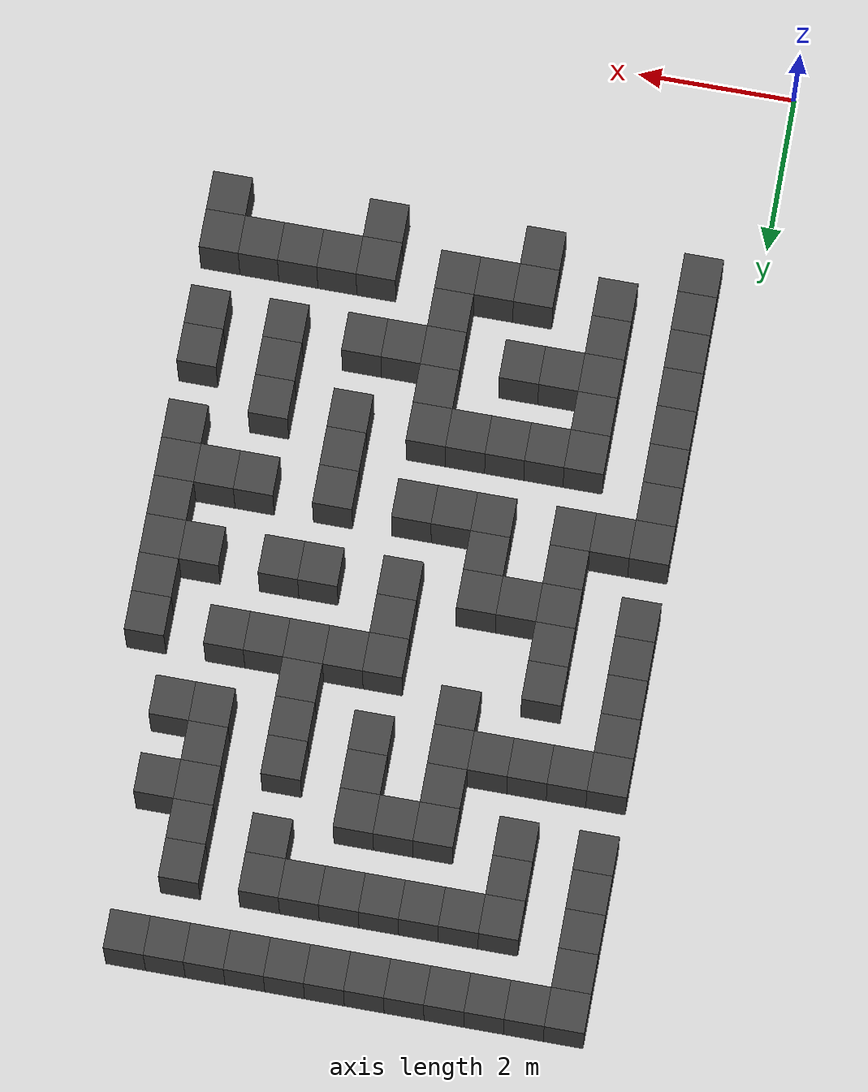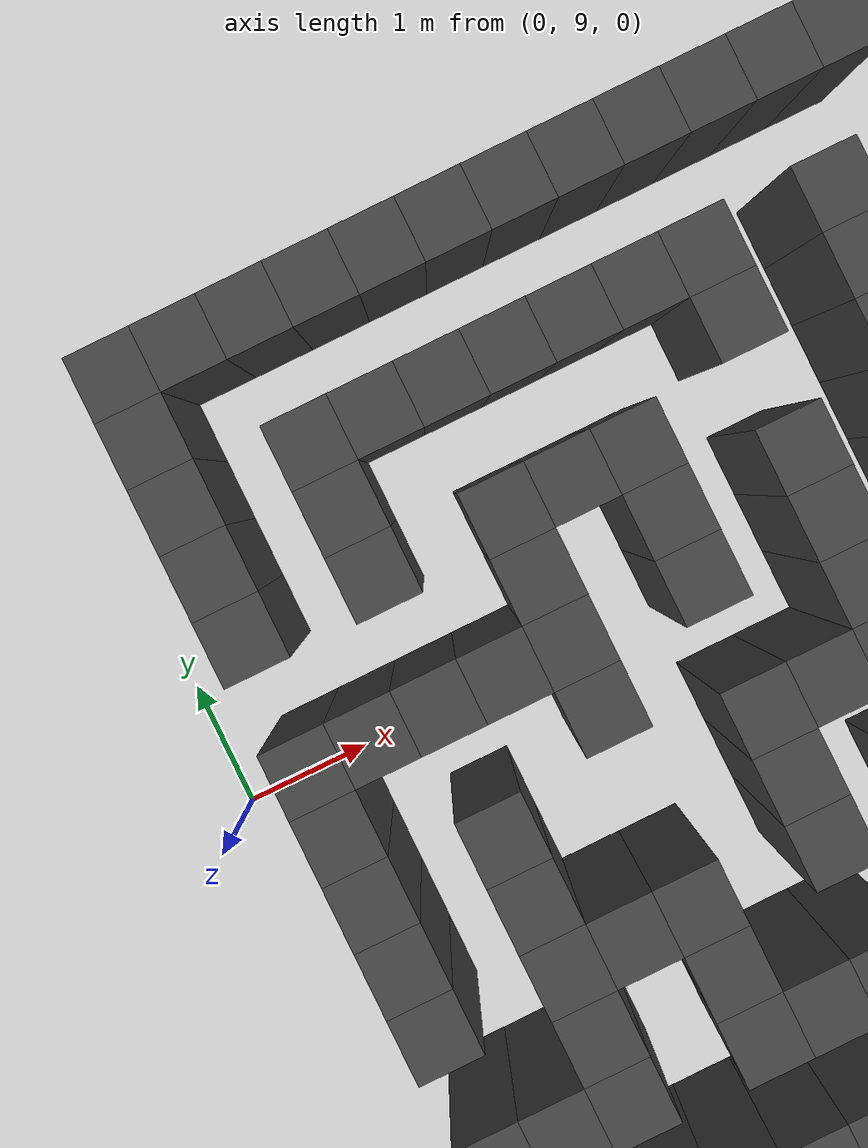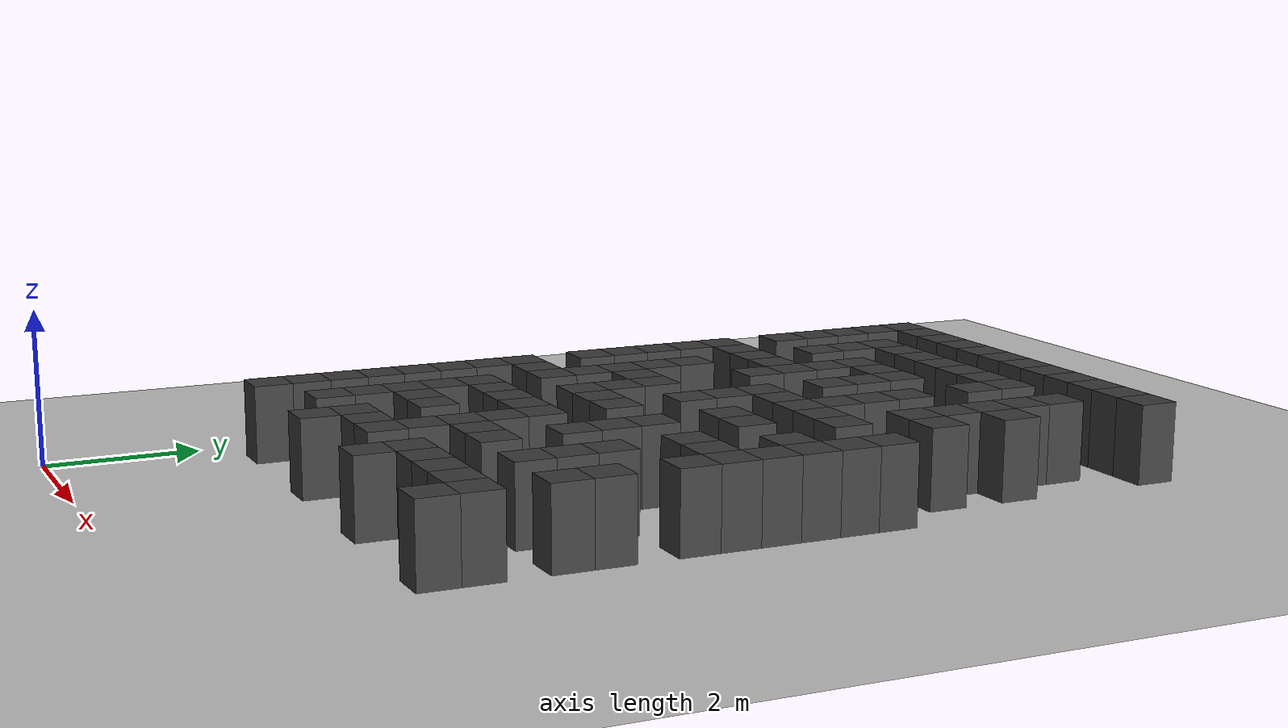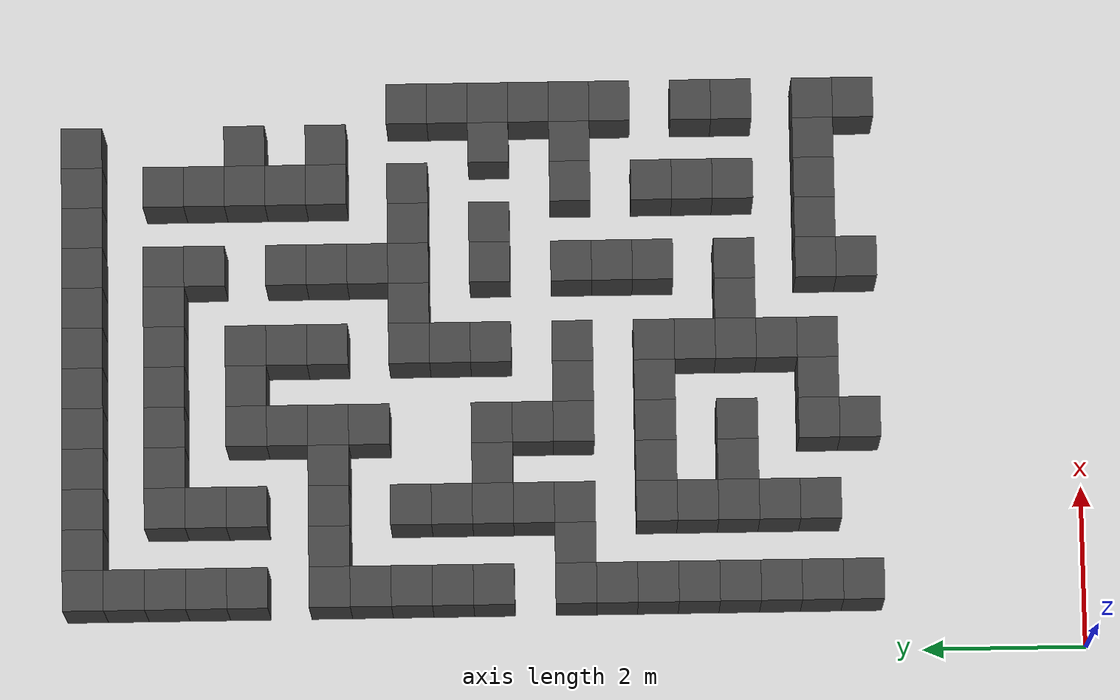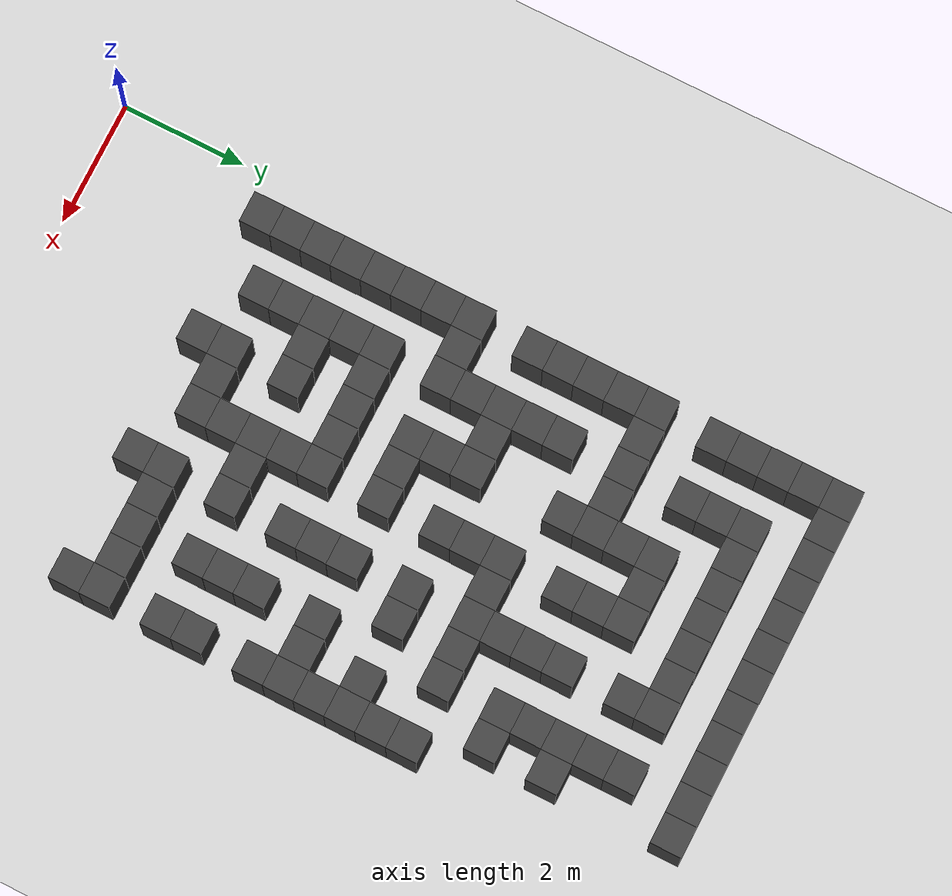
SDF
<sdf version="1.7">
 <world name="map_16588">
  <model name="ground_plane">
   <static>true</static>
   <link name="link">
    <collision name="collision">
     <geometry><plane><normal>0 0 1</normal><size>200 200</size></plane></geometry>
    </collision>
    <visual name="visual">
     <geometry><plane><normal>0 0 1</normal><size>200 200</size></plane></geometry>
     <material><ambient>0.8 0.8 0.8 1</ambient><diffuse>0.8 0.8 0.8 1</diffuse></material>
    </visual>
   </link>
  </model>
  <model name="maze_environment">
   <static>true</static>
   <link name="wall_26">
    <pose>0.750 12.250 0.500 0 0 0</pose>
    <collision name="col"><geometry><box><size>0.5 0.5 1.0</size></box></geometry></collision>
    <visual name="vis">
     <geometry><box><size>0.5 0.5 1.0</size></box></geometry>
     <material><ambient>0.15 0.15 0.15 1</ambient><diffuse>0.25 0.25 0.25 1</diffuse></material>
    </visual>
   </link>
   <link name="wall_27">
    <pose>1.250 12.250 0.500 0 0 0</pose>
    <collision name="col"><geometry><box><size>0.5 0.5 1.0</size></box></geometry></collision>
    <visual name="vis">
     <geometry><box><size>0.5 0.5 1.0</size></box></geometry>
     <material><ambient>0.15 0.15 0.15 1</ambient><diffuse>0.25 0.25 0.25 1</diffuse></material>
    </visual>
   </link>
   <link name="wall_28">
    <pose>1.750 12.250 0.500 0 0 0</pose>
    <collision name="col"><geometry><box><size>0.5 0.5 1.0</size></box></geometry></collision>
    <visual name="vis">
     <geometry><box><size>0.5 0.5 1.0</size></box></geometry>
     <material><ambient>0.15 0.15 0.15 1</ambient><diffuse>0.25 0.25 0.25 1</diffuse></material>
    </visual>
   </link>
   <link name="wall_29">
    <pose>2.250 12.250 0.500 0 0 0</pose>
    <collision name="col"><geometry><box><size>0.5 0.5 1.0</size></box></geometry></collision>
    <visual name="vis">
     <geometry><box><size>0.5 0.5 1.0</size></box></geometry>
     <material><ambient>0.15 0.15 0.15 1</ambient><diffuse>0.25 0.25 0.25 1</diffuse></material>
    </visual>
   </link>
   <link name="wall_30">
    <pose>2.750 12.250 0.500 0 0 0</pose>
    <collision name="col"><geometry><box><size>0.5 0.5 1.0</size></box></geometry></collision>
    <visual name="vis">
     <geometry><box><size>0.5 0.5 1.0</size></box></geometry>
     <material><ambient>0.15 0.15 0.15 1</ambient><diffuse>0.25 0.25 0.25 1</diffuse></material>
    </visual>
   </link>
   <link name="wall_31">
    <pose>3.250 12.250 0.500 0 0 0</pose>
    <collision name="col"><geometry><box><size>0.5 0.5 1.0</size></box></geometry></collision>
    <visual name="vis">
     <geometry><box><size>0.5 0.5 1.0</size></box></geometry>
     <material><ambient>0.15 0.15 0.15 1</ambient><diffuse>0.25 0.25 0.25 1</diffuse></material>
    </visual>
   </link>
   <link name="wall_32">
    <pose>3.750 12.250 0.500 0 0 0</pose>
    <collision name="col"><geometry><box><size>0.5 0.5 1.0</size></box></geometry></collision>
    <visual name="vis">
     <geometry><box><size>0.5 0.5 1.0</size></box></geometry>
     <material><ambient>0.15 0.15 0.15 1</ambient><diffuse>0.25 0.25 0.25 1</diffuse></material>
    </visual>
   </link>
   <link name="wall_33">
    <pose>4.250 12.250 0.500 0 0 0</pose>
    <collision name="col"><geometry><box><size>0.5 0.5 1.0</size></box></geometry></collision>
    <visual name="vis">
     <geometry><box><size>0.5 0.5 1.0</size></box></geometry>
     <material><ambient>0.15 0.15 0.15 1</ambient><diffuse>0.25 0.25 0.25 1</diffuse></material>
    </visual>
   </link>
   <link name="wall_34">
    <pose>4.750 12.250 0.500 0 0 0</pose>
    <collision name="col"><geometry><box><size>0.5 0.5 1.0</size></box></geometry></collision>
    <visual name="vis">
     <geometry><box><size>0.5 0.5 1.0</size></box></geometry>
     <material><ambient>0.15 0.15 0.15 1</ambient><diffuse>0.25 0.25 0.25 1</diffuse></material>
    </visual>
   </link>
   <link name="wall_35">
    <pose>5.250 12.250 0.500 0 0 0</pose>
    <collision name="col"><geometry><box><size>0.5 0.5 1.0</size></box></geometry></collision>
    <visual name="vis">
     <geometry><box><size>0.5 0.5 1.0</size></box></geometry>
     <material><ambient>0.15 0.15 0.15 1</ambient><diffuse>0.25 0.25 0.25 1</diffuse></material>
    </visual>
   </link>
   <link name="wall_36">
    <pose>5.750 12.250 0.500 0 0 0</pose>
    <collision name="col"><geometry><box><size>0.5 0.5 1.0</size></box></geometry></collision>
    <visual name="vis">
     <geometry><box><size>0.5 0.5 1.0</size></box></geometry>
     <material><ambient>0.15 0.15 0.15 1</ambient><diffuse>0.25 0.25 0.25 1</diffuse></material>
    </visual>
   </link>
   <link name="wall_37">
    <pose>6.250 12.250 0.500 0 0 0</pose>
    <collision name="col"><geometry><box><size>0.5 0.5 1.0</size></box></geometry></collision>
    <visual name="vis">
     <geometry><box><size>0.5 0.5 1.0</size></box></geometry>
     <material><ambient>0.15 0.15 0.15 1</ambient><diffuse>0.25 0.25 0.25 1</diffuse></material>
    </visual>
   </link>
   <link name="wall_55">
    <pose>0.750 11.750 0.500 0 0 0</pose>
    <collision name="col"><geometry><box><size>0.5 0.5 1.0</size></box></geometry></collision>
    <visual name="vis">
     <geometry><box><size>0.5 0.5 1.0</size></box></geometry>
     <material><ambient>0.15 0.15 0.15 1</ambient><diffuse>0.25 0.25 0.25 1</diffuse></material>
    </visual>
   </link>
   <link name="wall_75">
    <pose>0.750 11.250 0.500 0 0 0</pose>
    <collision name="col"><geometry><box><size>0.5 0.5 1.0</size></box></geometry></collision>
    <visual name="vis">
     <geometry><box><size>0.5 0.5 1.0</size></box></geometry>
     <material><ambient>0.15 0.15 0.15 1</ambient><diffuse>0.25 0.25 0.25 1</diffuse></material>
    </visual>
   </link>
   <link name="wall_76">
    <pose>1.750 11.250 0.500 0 0 0</pose>
    <collision name="col"><geometry><box><size>0.5 0.5 1.0</size></box></geometry></collision>
    <visual name="vis">
     <geometry><box><size>0.5 0.5 1.0</size></box></geometry>
     <material><ambient>0.15 0.15 0.15 1</ambient><diffuse>0.25 0.25 0.25 1</diffuse></material>
    </visual>
   </link>
   <link name="wall_77">
    <pose>2.250 11.250 0.500 0 0 0</pose>
    <collision name="col"><geometry><box><size>0.5 0.5 1.0</size></box></geometry></collision>
    <visual name="vis">
     <geometry><box><size>0.5 0.5 1.0</size></box></geometry>
     <material><ambient>0.15 0.15 0.15 1</ambient><diffuse>0.25 0.25 0.25 1</diffuse></material>
    </visual>
   </link>
   <link name="wall_78">
    <pose>2.750 11.250 0.500 0 0 0</pose>
    <collision name="col"><geometry><box><size>0.5 0.5 1.0</size></box></geometry></collision>
    <visual name="vis">
     <geometry><box><size>0.5 0.5 1.0</size></box></geometry>
     <material><ambient>0.15 0.15 0.15 1</ambient><diffuse>0.25 0.25 0.25 1</diffuse></material>
    </visual>
   </link>
   <link name="wall_79">
    <pose>3.250 11.250 0.500 0 0 0</pose>
    <collision name="col"><geometry><box><size>0.5 0.5 1.0</size></box></geometry></collision>
    <visual name="vis">
     <geometry><box><size>0.5 0.5 1.0</size></box></geometry>
     <material><ambient>0.15 0.15 0.15 1</ambient><diffuse>0.25 0.25 0.25 1</diffuse></material>
    </visual>
   </link>
   <link name="wall_80">
    <pose>3.750 11.250 0.500 0 0 0</pose>
    <collision name="col"><geometry><box><size>0.5 0.5 1.0</size></box></geometry></collision>
    <visual name="vis">
     <geometry><box><size>0.5 0.5 1.0</size></box></geometry>
     <material><ambient>0.15 0.15 0.15 1</ambient><diffuse>0.25 0.25 0.25 1</diffuse></material>
    </visual>
   </link>
   <link name="wall_81">
    <pose>4.250 11.250 0.500 0 0 0</pose>
    <collision name="col"><geometry><box><size>0.5 0.5 1.0</size></box></geometry></collision>
    <visual name="vis">
     <geometry><box><size>0.5 0.5 1.0</size></box></geometry>
     <material><ambient>0.15 0.15 0.15 1</ambient><diffuse>0.25 0.25 0.25 1</diffuse></material>
    </visual>
   </link>
   <link name="wall_82">
    <pose>4.750 11.250 0.500 0 0 0</pose>
    <collision name="col"><geometry><box><size>0.5 0.5 1.0</size></box></geometry></collision>
    <visual name="vis">
     <geometry><box><size>0.5 0.5 1.0</size></box></geometry>
     <material><ambient>0.15 0.15 0.15 1</ambient><diffuse>0.25 0.25 0.25 1</diffuse></material>
    </visual>
   </link>
   <link name="wall_83">
    <pose>5.750 11.250 0.500 0 0 0</pose>
    <collision name="col"><geometry><box><size>0.5 0.5 1.0</size></box></geometry></collision>
    <visual name="vis">
     <geometry><box><size>0.5 0.5 1.0</size></box></geometry>
     <material><ambient>0.15 0.15 0.15 1</ambient><diffuse>0.25 0.25 0.25 1</diffuse></material>
    </visual>
   </link>
   <link name="wall_101">
    <pose>0.750 10.750 0.500 0 0 0</pose>
    <collision name="col"><geometry><box><size>0.5 0.5 1.0</size></box></geometry></collision>
    <visual name="vis">
     <geometry><box><size>0.5 0.5 1.0</size></box></geometry>
     <material><ambient>0.15 0.15 0.15 1</ambient><diffuse>0.25 0.25 0.25 1</diffuse></material>
    </visual>
   </link>
   <link name="wall_102">
    <pose>1.750 10.750 0.500 0 0 0</pose>
    <collision name="col"><geometry><box><size>0.5 0.5 1.0</size></box></geometry></collision>
    <visual name="vis">
     <geometry><box><size>0.5 0.5 1.0</size></box></geometry>
     <material><ambient>0.15 0.15 0.15 1</ambient><diffuse>0.25 0.25 0.25 1</diffuse></material>
    </visual>
   </link>
   <link name="wall_103">
    <pose>4.750 10.750 0.500 0 0 0</pose>
    <collision name="col"><geometry><box><size>0.5 0.5 1.0</size></box></geometry></collision>
    <visual name="vis">
     <geometry><box><size>0.5 0.5 1.0</size></box></geometry>
     <material><ambient>0.15 0.15 0.15 1</ambient><diffuse>0.25 0.25 0.25 1</diffuse></material>
    </visual>
   </link>
   <link name="wall_104">
    <pose>5.750 10.750 0.500 0 0 0</pose>
    <collision name="col"><geometry><box><size>0.5 0.5 1.0</size></box></geometry></collision>
    <visual name="vis">
     <geometry><box><size>0.5 0.5 1.0</size></box></geometry>
     <material><ambient>0.15 0.15 0.15 1</ambient><diffuse>0.25 0.25 0.25 1</diffuse></material>
    </visual>
   </link>
   <link name="wall_124">
    <pose>0.750 10.250 0.500 0 0 0</pose>
    <collision name="col"><geometry><box><size>0.5 0.5 1.0</size></box></geometry></collision>
    <visual name="vis">
     <geometry><box><size>0.5 0.5 1.0</size></box></geometry>
     <material><ambient>0.15 0.15 0.15 1</ambient><diffuse>0.25 0.25 0.25 1</diffuse></material>
    </visual>
   </link>
   <link name="wall_125">
    <pose>1.750 10.250 0.500 0 0 0</pose>
    <collision name="col"><geometry><box><size>0.5 0.5 1.0</size></box></geometry></collision>
    <visual name="vis">
     <geometry><box><size>0.5 0.5 1.0</size></box></geometry>
     <material><ambient>0.15 0.15 0.15 1</ambient><diffuse>0.25 0.25 0.25 1</diffuse></material>
    </visual>
   </link>
   <link name="wall_126">
    <pose>2.750 10.250 0.500 0 0 0</pose>
    <collision name="col"><geometry><box><size>0.5 0.5 1.0</size></box></geometry></collision>
    <visual name="vis">
     <geometry><box><size>0.5 0.5 1.0</size></box></geometry>
     <material><ambient>0.15 0.15 0.15 1</ambient><diffuse>0.25 0.25 0.25 1</diffuse></material>
    </visual>
   </link>
   <link name="wall_127">
    <pose>3.250 10.250 0.500 0 0 0</pose>
    <collision name="col"><geometry><box><size>0.5 0.5 1.0</size></box></geometry></collision>
    <visual name="vis">
     <geometry><box><size>0.5 0.5 1.0</size></box></geometry>
     <material><ambient>0.15 0.15 0.15 1</ambient><diffuse>0.25 0.25 0.25 1</diffuse></material>
    </visual>
   </link>
   <link name="wall_128">
    <pose>3.750 10.250 0.500 0 0 0</pose>
    <collision name="col"><geometry><box><size>0.5 0.5 1.0</size></box></geometry></collision>
    <visual name="vis">
     <geometry><box><size>0.5 0.5 1.0</size></box></geometry>
     <material><ambient>0.15 0.15 0.15 1</ambient><diffuse>0.25 0.25 0.25 1</diffuse></material>
    </visual>
   </link>
   <link name="wall_129">
    <pose>5.750 10.250 0.500 0 0 0</pose>
    <collision name="col"><geometry><box><size>0.5 0.5 1.0</size></box></geometry></collision>
    <visual name="vis">
     <geometry><box><size>0.5 0.5 1.0</size></box></geometry>
     <material><ambient>0.15 0.15 0.15 1</ambient><diffuse>0.25 0.25 0.25 1</diffuse></material>
    </visual>
   </link>
   <link name="wall_130">
    <pose>6.250 10.250 0.500 0 0 0</pose>
    <collision name="col"><geometry><box><size>0.5 0.5 1.0</size></box></geometry></collision>
    <visual name="vis">
     <geometry><box><size>0.5 0.5 1.0</size></box></geometry>
     <material><ambient>0.15 0.15 0.15 1</ambient><diffuse>0.25 0.25 0.25 1</diffuse></material>
    </visual>
   </link>
   <link name="wall_148">
    <pose>2.750 9.750 0.500 0 0 0</pose>
    <collision name="col"><geometry><box><size>0.5 0.5 1.0</size></box></geometry></collision>
    <visual name="vis">
     <geometry><box><size>0.5 0.5 1.0</size></box></geometry>
     <material><ambient>0.15 0.15 0.15 1</ambient><diffuse>0.25 0.25 0.25 1</diffuse></material>
    </visual>
   </link>
   <link name="wall_149">
    <pose>3.750 9.750 0.500 0 0 0</pose>
    <collision name="col"><geometry><box><size>0.5 0.5 1.0</size></box></geometry></collision>
    <visual name="vis">
     <geometry><box><size>0.5 0.5 1.0</size></box></geometry>
     <material><ambient>0.15 0.15 0.15 1</ambient><diffuse>0.25 0.25 0.25 1</diffuse></material>
    </visual>
   </link>
   <link name="wall_150">
    <pose>4.750 9.750 0.500 0 0 0</pose>
    <collision name="col"><geometry><box><size>0.5 0.5 1.0</size></box></geometry></collision>
    <visual name="vis">
     <geometry><box><size>0.5 0.5 1.0</size></box></geometry>
     <material><ambient>0.15 0.15 0.15 1</ambient><diffuse>0.25 0.25 0.25 1</diffuse></material>
    </visual>
   </link>
   <link name="wall_151">
    <pose>5.750 9.750 0.500 0 0 0</pose>
    <collision name="col"><geometry><box><size>0.5 0.5 1.0</size></box></geometry></collision>
    <visual name="vis">
     <geometry><box><size>0.5 0.5 1.0</size></box></geometry>
     <material><ambient>0.15 0.15 0.15 1</ambient><diffuse>0.25 0.25 0.25 1</diffuse></material>
    </visual>
   </link>
   <link name="wall_172">
    <pose>0.750 9.250 0.500 0 0 0</pose>
    <collision name="col"><geometry><box><size>0.5 0.5 1.0</size></box></geometry></collision>
    <visual name="vis">
     <geometry><box><size>0.5 0.5 1.0</size></box></geometry>
     <material><ambient>0.15 0.15 0.15 1</ambient><diffuse>0.25 0.25 0.25 1</diffuse></material>
    </visual>
   </link>
   <link name="wall_173">
    <pose>1.250 9.250 0.500 0 0 0</pose>
    <collision name="col"><geometry><box><size>0.5 0.5 1.0</size></box></geometry></collision>
    <visual name="vis">
     <geometry><box><size>0.5 0.5 1.0</size></box></geometry>
     <material><ambient>0.15 0.15 0.15 1</ambient><diffuse>0.25 0.25 0.25 1</diffuse></material>
    </visual>
   </link>
   <link name="wall_174">
    <pose>1.750 9.250 0.500 0 0 0</pose>
    <collision name="col"><geometry><box><size>0.5 0.5 1.0</size></box></geometry></collision>
    <visual name="vis">
     <geometry><box><size>0.5 0.5 1.0</size></box></geometry>
     <material><ambient>0.15 0.15 0.15 1</ambient><diffuse>0.25 0.25 0.25 1</diffuse></material>
    </visual>
   </link>
   <link name="wall_175">
    <pose>2.250 9.250 0.500 0 0 0</pose>
    <collision name="col"><geometry><box><size>0.5 0.5 1.0</size></box></geometry></collision>
    <visual name="vis">
     <geometry><box><size>0.5 0.5 1.0</size></box></geometry>
     <material><ambient>0.15 0.15 0.15 1</ambient><diffuse>0.25 0.25 0.25 1</diffuse></material>
    </visual>
   </link>
   <link name="wall_176">
    <pose>2.750 9.250 0.500 0 0 0</pose>
    <collision name="col"><geometry><box><size>0.5 0.5 1.0</size></box></geometry></collision>
    <visual name="vis">
     <geometry><box><size>0.5 0.5 1.0</size></box></geometry>
     <material><ambient>0.15 0.15 0.15 1</ambient><diffuse>0.25 0.25 0.25 1</diffuse></material>
    </visual>
   </link>
   <link name="wall_177">
    <pose>3.750 9.250 0.500 0 0 0</pose>
    <collision name="col"><geometry><box><size>0.5 0.5 1.0</size></box></geometry></collision>
    <visual name="vis">
     <geometry><box><size>0.5 0.5 1.0</size></box></geometry>
     <material><ambient>0.15 0.15 0.15 1</ambient><diffuse>0.25 0.25 0.25 1</diffuse></material>
    </visual>
   </link>
   <link name="wall_178">
    <pose>4.750 9.250 0.500 0 0 0</pose>
    <collision name="col"><geometry><box><size>0.5 0.5 1.0</size></box></geometry></collision>
    <visual name="vis">
     <geometry><box><size>0.5 0.5 1.0</size></box></geometry>
     <material><ambient>0.15 0.15 0.15 1</ambient><diffuse>0.25 0.25 0.25 1</diffuse></material>
    </visual>
   </link>
   <link name="wall_179">
    <pose>5.750 9.250 0.500 0 0 0</pose>
    <collision name="col"><geometry><box><size>0.5 0.5 1.0</size></box></geometry></collision>
    <visual name="vis">
     <geometry><box><size>0.5 0.5 1.0</size></box></geometry>
     <material><ambient>0.15 0.15 0.15 1</ambient><diffuse>0.25 0.25 0.25 1</diffuse></material>
    </visual>
   </link>
   <link name="wall_180">
    <pose>6.250 9.250 0.500 0 0 0</pose>
    <collision name="col"><geometry><box><size>0.5 0.5 1.0</size></box></geometry></collision>
    <visual name="vis">
     <geometry><box><size>0.5 0.5 1.0</size></box></geometry>
     <material><ambient>0.15 0.15 0.15 1</ambient><diffuse>0.25 0.25 0.25 1</diffuse></material>
    </visual>
   </link>
   <link name="wall_195">
    <pose>0.750 8.750 0.500 0 0 0</pose>
    <collision name="col"><geometry><box><size>0.5 0.5 1.0</size></box></geometry></collision>
    <visual name="vis">
     <geometry><box><size>0.5 0.5 1.0</size></box></geometry>
     <material><ambient>0.15 0.15 0.15 1</ambient><diffuse>0.25 0.25 0.25 1</diffuse></material>
    </visual>
   </link>
   <link name="wall_196">
    <pose>2.750 8.750 0.500 0 0 0</pose>
    <collision name="col"><geometry><box><size>0.5 0.5 1.0</size></box></geometry></collision>
    <visual name="vis">
     <geometry><box><size>0.5 0.5 1.0</size></box></geometry>
     <material><ambient>0.15 0.15 0.15 1</ambient><diffuse>0.25 0.25 0.25 1</diffuse></material>
    </visual>
   </link>
   <link name="wall_197">
    <pose>4.750 8.750 0.500 0 0 0</pose>
    <collision name="col"><geometry><box><size>0.5 0.5 1.0</size></box></geometry></collision>
    <visual name="vis">
     <geometry><box><size>0.5 0.5 1.0</size></box></geometry>
     <material><ambient>0.15 0.15 0.15 1</ambient><diffuse>0.25 0.25 0.25 1</diffuse></material>
    </visual>
   </link>
   <link name="wall_219">
    <pose>0.750 8.250 0.500 0 0 0</pose>
    <collision name="col"><geometry><box><size>0.5 0.5 1.0</size></box></geometry></collision>
    <visual name="vis">
     <geometry><box><size>0.5 0.5 1.0</size></box></geometry>
     <material><ambient>0.15 0.15 0.15 1</ambient><diffuse>0.25 0.25 0.25 1</diffuse></material>
    </visual>
   </link>
   <link name="wall_220">
    <pose>1.750 8.250 0.500 0 0 0</pose>
    <collision name="col"><geometry><box><size>0.5 0.5 1.0</size></box></geometry></collision>
    <visual name="vis">
     <geometry><box><size>0.5 0.5 1.0</size></box></geometry>
     <material><ambient>0.15 0.15 0.15 1</ambient><diffuse>0.25 0.25 0.25 1</diffuse></material>
    </visual>
   </link>
   <link name="wall_221">
    <pose>3.750 8.250 0.500 0 0 0</pose>
    <collision name="col"><geometry><box><size>0.5 0.5 1.0</size></box></geometry></collision>
    <visual name="vis">
     <geometry><box><size>0.5 0.5 1.0</size></box></geometry>
     <material><ambient>0.15 0.15 0.15 1</ambient><diffuse>0.25 0.25 0.25 1</diffuse></material>
    </visual>
   </link>
   <link name="wall_222">
    <pose>4.250 8.250 0.500 0 0 0</pose>
    <collision name="col"><geometry><box><size>0.5 0.5 1.0</size></box></geometry></collision>
    <visual name="vis">
     <geometry><box><size>0.5 0.5 1.0</size></box></geometry>
     <material><ambient>0.15 0.15 0.15 1</ambient><diffuse>0.25 0.25 0.25 1</diffuse></material>
    </visual>
   </link>
   <link name="wall_223">
    <pose>4.750 8.250 0.500 0 0 0</pose>
    <collision name="col"><geometry><box><size>0.5 0.5 1.0</size></box></geometry></collision>
    <visual name="vis">
     <geometry><box><size>0.5 0.5 1.0</size></box></geometry>
     <material><ambient>0.15 0.15 0.15 1</ambient><diffuse>0.25 0.25 0.25 1</diffuse></material>
    </visual>
   </link>
   <link name="wall_224">
    <pose>5.250 8.250 0.500 0 0 0</pose>
    <collision name="col"><geometry><box><size>0.5 0.5 1.0</size></box></geometry></collision>
    <visual name="vis">
     <geometry><box><size>0.5 0.5 1.0</size></box></geometry>
     <material><ambient>0.15 0.15 0.15 1</ambient><diffuse>0.25 0.25 0.25 1</diffuse></material>
    </visual>
   </link>
   <link name="wall_225">
    <pose>5.750 8.250 0.500 0 0 0</pose>
    <collision name="col"><geometry><box><size>0.5 0.5 1.0</size></box></geometry></collision>
    <visual name="vis">
     <geometry><box><size>0.5 0.5 1.0</size></box></geometry>
     <material><ambient>0.15 0.15 0.15 1</ambient><diffuse>0.25 0.25 0.25 1</diffuse></material>
    </visual>
   </link>
   <link name="wall_226">
    <pose>6.750 8.250 0.500 0 0 0</pose>
    <collision name="col"><geometry><box><size>0.5 0.5 1.0</size></box></geometry></collision>
    <visual name="vis">
     <geometry><box><size>0.5 0.5 1.0</size></box></geometry>
     <material><ambient>0.15 0.15 0.15 1</ambient><diffuse>0.25 0.25 0.25 1</diffuse></material>
    </visual>
   </link>
   <link name="wall_241">
    <pose>0.750 7.750 0.500 0 0 0</pose>
    <collision name="col"><geometry><box><size>0.5 0.5 1.0</size></box></geometry></collision>
    <visual name="vis">
     <geometry><box><size>0.5 0.5 1.0</size></box></geometry>
     <material><ambient>0.15 0.15 0.15 1</ambient><diffuse>0.25 0.25 0.25 1</diffuse></material>
    </visual>
   </link>
   <link name="wall_242">
    <pose>1.750 7.750 0.500 0 0 0</pose>
    <collision name="col"><geometry><box><size>0.5 0.5 1.0</size></box></geometry></collision>
    <visual name="vis">
     <geometry><box><size>0.5 0.5 1.0</size></box></geometry>
     <material><ambient>0.15 0.15 0.15 1</ambient><diffuse>0.25 0.25 0.25 1</diffuse></material>
    </visual>
   </link>
   <link name="wall_243">
    <pose>3.750 7.750 0.500 0 0 0</pose>
    <collision name="col"><geometry><box><size>0.5 0.5 1.0</size></box></geometry></collision>
    <visual name="vis">
     <geometry><box><size>0.5 0.5 1.0</size></box></geometry>
     <material><ambient>0.15 0.15 0.15 1</ambient><diffuse>0.25 0.25 0.25 1</diffuse></material>
    </visual>
   </link>
   <link name="wall_244">
    <pose>6.750 7.750 0.500 0 0 0</pose>
    <collision name="col"><geometry><box><size>0.5 0.5 1.0</size></box></geometry></collision>
    <visual name="vis">
     <geometry><box><size>0.5 0.5 1.0</size></box></geometry>
     <material><ambient>0.15 0.15 0.15 1</ambient><diffuse>0.25 0.25 0.25 1</diffuse></material>
    </visual>
   </link>
   <link name="wall_266">
    <pose>0.750 7.250 0.500 0 0 0</pose>
    <collision name="col"><geometry><box><size>0.5 0.5 1.0</size></box></geometry></collision>
    <visual name="vis">
     <geometry><box><size>0.5 0.5 1.0</size></box></geometry>
     <material><ambient>0.15 0.15 0.15 1</ambient><diffuse>0.25 0.25 0.25 1</diffuse></material>
    </visual>
   </link>
   <link name="wall_267">
    <pose>1.750 7.250 0.500 0 0 0</pose>
    <collision name="col"><geometry><box><size>0.5 0.5 1.0</size></box></geometry></collision>
    <visual name="vis">
     <geometry><box><size>0.5 0.5 1.0</size></box></geometry>
     <material><ambient>0.15 0.15 0.15 1</ambient><diffuse>0.25 0.25 0.25 1</diffuse></material>
    </visual>
   </link>
   <link name="wall_268">
    <pose>2.250 7.250 0.500 0 0 0</pose>
    <collision name="col"><geometry><box><size>0.5 0.5 1.0</size></box></geometry></collision>
    <visual name="vis">
     <geometry><box><size>0.5 0.5 1.0</size></box></geometry>
     <material><ambient>0.15 0.15 0.15 1</ambient><diffuse>0.25 0.25 0.25 1</diffuse></material>
    </visual>
   </link>
   <link name="wall_269">
    <pose>2.750 7.250 0.500 0 0 0</pose>
    <collision name="col"><geometry><box><size>0.5 0.5 1.0</size></box></geometry></collision>
    <visual name="vis">
     <geometry><box><size>0.5 0.5 1.0</size></box></geometry>
     <material><ambient>0.15 0.15 0.15 1</ambient><diffuse>0.25 0.25 0.25 1</diffuse></material>
    </visual>
   </link>
   <link name="wall_270">
    <pose>3.750 7.250 0.500 0 0 0</pose>
    <collision name="col"><geometry><box><size>0.5 0.5 1.0</size></box></geometry></collision>
    <visual name="vis">
     <geometry><box><size>0.5 0.5 1.0</size></box></geometry>
     <material><ambient>0.15 0.15 0.15 1</ambient><diffuse>0.25 0.25 0.25 1</diffuse></material>
    </visual>
   </link>
   <link name="wall_271">
    <pose>4.750 7.250 0.500 0 0 0</pose>
    <collision name="col"><geometry><box><size>0.5 0.5 1.0</size></box></geometry></collision>
    <visual name="vis">
     <geometry><box><size>0.5 0.5 1.0</size></box></geometry>
     <material><ambient>0.15 0.15 0.15 1</ambient><diffuse>0.25 0.25 0.25 1</diffuse></material>
    </visual>
   </link>
   <link name="wall_272">
    <pose>5.250 7.250 0.500 0 0 0</pose>
    <collision name="col"><geometry><box><size>0.5 0.5 1.0</size></box></geometry></collision>
    <visual name="vis">
     <geometry><box><size>0.5 0.5 1.0</size></box></geometry>
     <material><ambient>0.15 0.15 0.15 1</ambient><diffuse>0.25 0.25 0.25 1</diffuse></material>
    </visual>
   </link>
   <link name="wall_273">
    <pose>6.250 7.250 0.500 0 0 0</pose>
    <collision name="col"><geometry><box><size>0.5 0.5 1.0</size></box></geometry></collision>
    <visual name="vis">
     <geometry><box><size>0.5 0.5 1.0</size></box></geometry>
     <material><ambient>0.15 0.15 0.15 1</ambient><diffuse>0.25 0.25 0.25 1</diffuse></material>
    </visual>
   </link>
   <link name="wall_274">
    <pose>6.750 7.250 0.500 0 0 0</pose>
    <collision name="col"><geometry><box><size>0.5 0.5 1.0</size></box></geometry></collision>
    <visual name="vis">
     <geometry><box><size>0.5 0.5 1.0</size></box></geometry>
     <material><ambient>0.15 0.15 0.15 1</ambient><diffuse>0.25 0.25 0.25 1</diffuse></material>
    </visual>
   </link>
   <link name="wall_289">
    <pose>1.750 6.750 0.500 0 0 0</pose>
    <collision name="col"><geometry><box><size>0.5 0.5 1.0</size></box></geometry></collision>
    <visual name="vis">
     <geometry><box><size>0.5 0.5 1.0</size></box></geometry>
     <material><ambient>0.15 0.15 0.15 1</ambient><diffuse>0.25 0.25 0.25 1</diffuse></material>
    </visual>
   </link>
   <link name="wall_290">
    <pose>2.750 6.750 0.500 0 0 0</pose>
    <collision name="col"><geometry><box><size>0.5 0.5 1.0</size></box></geometry></collision>
    <visual name="vis">
     <geometry><box><size>0.5 0.5 1.0</size></box></geometry>
     <material><ambient>0.15 0.15 0.15 1</ambient><diffuse>0.25 0.25 0.25 1</diffuse></material>
    </visual>
   </link>
   <link name="wall_291">
    <pose>6.750 6.750 0.500 0 0 0</pose>
    <collision name="col"><geometry><box><size>0.5 0.5 1.0</size></box></geometry></collision>
    <visual name="vis">
     <geometry><box><size>0.5 0.5 1.0</size></box></geometry>
     <material><ambient>0.15 0.15 0.15 1</ambient><diffuse>0.25 0.25 0.25 1</diffuse></material>
    </visual>
   </link>
   <link name="wall_312">
    <pose>0.750 6.250 0.500 0 0 0</pose>
    <collision name="col"><geometry><box><size>0.5 0.5 1.0</size></box></geometry></collision>
    <visual name="vis">
     <geometry><box><size>0.5 0.5 1.0</size></box></geometry>
     <material><ambient>0.15 0.15 0.15 1</ambient><diffuse>0.25 0.25 0.25 1</diffuse></material>
    </visual>
   </link>
   <link name="wall_313">
    <pose>1.250 6.250 0.500 0 0 0</pose>
    <collision name="col"><geometry><box><size>0.5 0.5 1.0</size></box></geometry></collision>
    <visual name="vis">
     <geometry><box><size>0.5 0.5 1.0</size></box></geometry>
     <material><ambient>0.15 0.15 0.15 1</ambient><diffuse>0.25 0.25 0.25 1</diffuse></material>
    </visual>
   </link>
   <link name="wall_314">
    <pose>1.750 6.250 0.500 0 0 0</pose>
    <collision name="col"><geometry><box><size>0.5 0.5 1.0</size></box></geometry></collision>
    <visual name="vis">
     <geometry><box><size>0.5 0.5 1.0</size></box></geometry>
     <material><ambient>0.15 0.15 0.15 1</ambient><diffuse>0.25 0.25 0.25 1</diffuse></material>
    </visual>
   </link>
   <link name="wall_315">
    <pose>2.750 6.250 0.500 0 0 0</pose>
    <collision name="col"><geometry><box><size>0.5 0.5 1.0</size></box></geometry></collision>
    <visual name="vis">
     <geometry><box><size>0.5 0.5 1.0</size></box></geometry>
     <material><ambient>0.15 0.15 0.15 1</ambient><diffuse>0.25 0.25 0.25 1</diffuse></material>
    </visual>
   </link>
   <link name="wall_316">
    <pose>3.250 6.250 0.500 0 0 0</pose>
    <collision name="col"><geometry><box><size>0.5 0.5 1.0</size></box></geometry></collision>
    <visual name="vis">
     <geometry><box><size>0.5 0.5 1.0</size></box></geometry>
     <material><ambient>0.15 0.15 0.15 1</ambient><diffuse>0.25 0.25 0.25 1</diffuse></material>
    </visual>
   </link>
   <link name="wall_317">
    <pose>3.750 6.250 0.500 0 0 0</pose>
    <collision name="col"><geometry><box><size>0.5 0.5 1.0</size></box></geometry></collision>
    <visual name="vis">
     <geometry><box><size>0.5 0.5 1.0</size></box></geometry>
     <material><ambient>0.15 0.15 0.15 1</ambient><diffuse>0.25 0.25 0.25 1</diffuse></material>
    </visual>
   </link>
   <link name="wall_318">
    <pose>4.750 6.250 0.500 0 0 0</pose>
    <collision name="col"><geometry><box><size>0.5 0.5 1.0</size></box></geometry></collision>
    <visual name="vis">
     <geometry><box><size>0.5 0.5 1.0</size></box></geometry>
     <material><ambient>0.15 0.15 0.15 1</ambient><diffuse>0.25 0.25 0.25 1</diffuse></material>
    </visual>
   </link>
   <link name="wall_319">
    <pose>5.750 6.250 0.500 0 0 0</pose>
    <collision name="col"><geometry><box><size>0.5 0.5 1.0</size></box></geometry></collision>
    <visual name="vis">
     <geometry><box><size>0.5 0.5 1.0</size></box></geometry>
     <material><ambient>0.15 0.15 0.15 1</ambient><diffuse>0.25 0.25 0.25 1</diffuse></material>
    </visual>
   </link>
   <link name="wall_320">
    <pose>6.250 6.250 0.500 0 0 0</pose>
    <collision name="col"><geometry><box><size>0.5 0.5 1.0</size></box></geometry></collision>
    <visual name="vis">
     <geometry><box><size>0.5 0.5 1.0</size></box></geometry>
     <material><ambient>0.15 0.15 0.15 1</ambient><diffuse>0.25 0.25 0.25 1</diffuse></material>
    </visual>
   </link>
   <link name="wall_321">
    <pose>6.750 6.250 0.500 0 0 0</pose>
    <collision name="col"><geometry><box><size>0.5 0.5 1.0</size></box></geometry></collision>
    <visual name="vis">
     <geometry><box><size>0.5 0.5 1.0</size></box></geometry>
     <material><ambient>0.15 0.15 0.15 1</ambient><diffuse>0.25 0.25 0.25 1</diffuse></material>
    </visual>
   </link>
   <link name="wall_340">
    <pose>0.750 5.750 0.500 0 0 0</pose>
    <collision name="col"><geometry><box><size>0.5 0.5 1.0</size></box></geometry></collision>
    <visual name="vis">
     <geometry><box><size>0.5 0.5 1.0</size></box></geometry>
     <material><ambient>0.15 0.15 0.15 1</ambient><diffuse>0.25 0.25 0.25 1</diffuse></material>
    </visual>
   </link>
   <link name="wall_341">
    <pose>4.750 5.750 0.500 0 0 0</pose>
    <collision name="col"><geometry><box><size>0.5 0.5 1.0</size></box></geometry></collision>
    <visual name="vis">
     <geometry><box><size>0.5 0.5 1.0</size></box></geometry>
     <material><ambient>0.15 0.15 0.15 1</ambient><diffuse>0.25 0.25 0.25 1</diffuse></material>
    </visual>
   </link>
   <link name="wall_342">
    <pose>6.750 5.750 0.500 0 0 0</pose>
    <collision name="col"><geometry><box><size>0.5 0.5 1.0</size></box></geometry></collision>
    <visual name="vis">
     <geometry><box><size>0.5 0.5 1.0</size></box></geometry>
     <material><ambient>0.15 0.15 0.15 1</ambient><diffuse>0.25 0.25 0.25 1</diffuse></material>
    </visual>
   </link>
   <link name="wall_358">
    <pose>0.750 5.250 0.500 0 0 0</pose>
    <collision name="col"><geometry><box><size>0.5 0.5 1.0</size></box></geometry></collision>
    <visual name="vis">
     <geometry><box><size>0.5 0.5 1.0</size></box></geometry>
     <material><ambient>0.15 0.15 0.15 1</ambient><diffuse>0.25 0.25 0.25 1</diffuse></material>
    </visual>
   </link>
   <link name="wall_359">
    <pose>1.750 5.250 0.500 0 0 0</pose>
    <collision name="col"><geometry><box><size>0.5 0.5 1.0</size></box></geometry></collision>
    <visual name="vis">
     <geometry><box><size>0.5 0.5 1.0</size></box></geometry>
     <material><ambient>0.15 0.15 0.15 1</ambient><diffuse>0.25 0.25 0.25 1</diffuse></material>
    </visual>
   </link>
   <link name="wall_360">
    <pose>2.250 5.250 0.500 0 0 0</pose>
    <collision name="col"><geometry><box><size>0.5 0.5 1.0</size></box></geometry></collision>
    <visual name="vis">
     <geometry><box><size>0.5 0.5 1.0</size></box></geometry>
     <material><ambient>0.15 0.15 0.15 1</ambient><diffuse>0.25 0.25 0.25 1</diffuse></material>
    </visual>
   </link>
   <link name="wall_361">
    <pose>2.750 5.250 0.500 0 0 0</pose>
    <collision name="col"><geometry><box><size>0.5 0.5 1.0</size></box></geometry></collision>
    <visual name="vis">
     <geometry><box><size>0.5 0.5 1.0</size></box></geometry>
     <material><ambient>0.15 0.15 0.15 1</ambient><diffuse>0.25 0.25 0.25 1</diffuse></material>
    </visual>
   </link>
   <link name="wall_362">
    <pose>3.250 5.250 0.500 0 0 0</pose>
    <collision name="col"><geometry><box><size>0.5 0.5 1.0</size></box></geometry></collision>
    <visual name="vis">
     <geometry><box><size>0.5 0.5 1.0</size></box></geometry>
     <material><ambient>0.15 0.15 0.15 1</ambient><diffuse>0.25 0.25 0.25 1</diffuse></material>
    </visual>
   </link>
   <link name="wall_363">
    <pose>3.750 5.250 0.500 0 0 0</pose>
    <collision name="col"><geometry><box><size>0.5 0.5 1.0</size></box></geometry></collision>
    <visual name="vis">
     <geometry><box><size>0.5 0.5 1.0</size></box></geometry>
     <material><ambient>0.15 0.15 0.15 1</ambient><diffuse>0.25 0.25 0.25 1</diffuse></material>
    </visual>
   </link>
   <link name="wall_364">
    <pose>4.750 5.250 0.500 0 0 0</pose>
    <collision name="col"><geometry><box><size>0.5 0.5 1.0</size></box></geometry></collision>
    <visual name="vis">
     <geometry><box><size>0.5 0.5 1.0</size></box></geometry>
     <material><ambient>0.15 0.15 0.15 1</ambient><diffuse>0.25 0.25 0.25 1</diffuse></material>
    </visual>
   </link>
   <link name="wall_365">
    <pose>5.750 5.250 0.500 0 0 0</pose>
    <collision name="col"><geometry><box><size>0.5 0.5 1.0</size></box></geometry></collision>
    <visual name="vis">
     <geometry><box><size>0.5 0.5 1.0</size></box></geometry>
     <material><ambient>0.15 0.15 0.15 1</ambient><diffuse>0.25 0.25 0.25 1</diffuse></material>
    </visual>
   </link>
   <link name="wall_381">
    <pose>0.750 4.750 0.500 0 0 0</pose>
    <collision name="col"><geometry><box><size>0.5 0.5 1.0</size></box></geometry></collision>
    <visual name="vis">
     <geometry><box><size>0.5 0.5 1.0</size></box></geometry>
     <material><ambient>0.15 0.15 0.15 1</ambient><diffuse>0.25 0.25 0.25 1</diffuse></material>
    </visual>
   </link>
   <link name="wall_382">
    <pose>1.750 4.750 0.500 0 0 0</pose>
    <collision name="col"><geometry><box><size>0.5 0.5 1.0</size></box></geometry></collision>
    <visual name="vis">
     <geometry><box><size>0.5 0.5 1.0</size></box></geometry>
     <material><ambient>0.15 0.15 0.15 1</ambient><diffuse>0.25 0.25 0.25 1</diffuse></material>
    </visual>
   </link>
   <link name="wall_383">
    <pose>3.750 4.750 0.500 0 0 0</pose>
    <collision name="col"><geometry><box><size>0.5 0.5 1.0</size></box></geometry></collision>
    <visual name="vis">
     <geometry><box><size>0.5 0.5 1.0</size></box></geometry>
     <material><ambient>0.15 0.15 0.15 1</ambient><diffuse>0.25 0.25 0.25 1</diffuse></material>
    </visual>
   </link>
   <link name="wall_384">
    <pose>5.750 4.750 0.500 0 0 0</pose>
    <collision name="col"><geometry><box><size>0.5 0.5 1.0</size></box></geometry></collision>
    <visual name="vis">
     <geometry><box><size>0.5 0.5 1.0</size></box></geometry>
     <material><ambient>0.15 0.15 0.15 1</ambient><diffuse>0.25 0.25 0.25 1</diffuse></material>
    </visual>
   </link>
   <link name="wall_385">
    <pose>6.750 4.750 0.500 0 0 0</pose>
    <collision name="col"><geometry><box><size>0.5 0.5 1.0</size></box></geometry></collision>
    <visual name="vis">
     <geometry><box><size>0.5 0.5 1.0</size></box></geometry>
     <material><ambient>0.15 0.15 0.15 1</ambient><diffuse>0.25 0.25 0.25 1</diffuse></material>
    </visual>
   </link>
   <link name="wall_407">
    <pose>0.750 4.250 0.500 0 0 0</pose>
    <collision name="col"><geometry><box><size>0.5 0.5 1.0</size></box></geometry></collision>
    <visual name="vis">
     <geometry><box><size>0.5 0.5 1.0</size></box></geometry>
     <material><ambient>0.15 0.15 0.15 1</ambient><diffuse>0.25 0.25 0.25 1</diffuse></material>
    </visual>
   </link>
   <link name="wall_408">
    <pose>1.750 4.250 0.500 0 0 0</pose>
    <collision name="col"><geometry><box><size>0.5 0.5 1.0</size></box></geometry></collision>
    <visual name="vis">
     <geometry><box><size>0.5 0.5 1.0</size></box></geometry>
     <material><ambient>0.15 0.15 0.15 1</ambient><diffuse>0.25 0.25 0.25 1</diffuse></material>
    </visual>
   </link>
   <link name="wall_409">
    <pose>2.250 4.250 0.500 0 0 0</pose>
    <collision name="col"><geometry><box><size>0.5 0.5 1.0</size></box></geometry></collision>
    <visual name="vis">
     <geometry><box><size>0.5 0.5 1.0</size></box></geometry>
     <material><ambient>0.15 0.15 0.15 1</ambient><diffuse>0.25 0.25 0.25 1</diffuse></material>
    </visual>
   </link>
   <link name="wall_410">
    <pose>2.750 4.250 0.500 0 0 0</pose>
    <collision name="col"><geometry><box><size>0.5 0.5 1.0</size></box></geometry></collision>
    <visual name="vis">
     <geometry><box><size>0.5 0.5 1.0</size></box></geometry>
     <material><ambient>0.15 0.15 0.15 1</ambient><diffuse>0.25 0.25 0.25 1</diffuse></material>
    </visual>
   </link>
   <link name="wall_411">
    <pose>3.750 4.250 0.500 0 0 0</pose>
    <collision name="col"><geometry><box><size>0.5 0.5 1.0</size></box></geometry></collision>
    <visual name="vis">
     <geometry><box><size>0.5 0.5 1.0</size></box></geometry>
     <material><ambient>0.15 0.15 0.15 1</ambient><diffuse>0.25 0.25 0.25 1</diffuse></material>
    </visual>
   </link>
   <link name="wall_412">
    <pose>4.250 4.250 0.500 0 0 0</pose>
    <collision name="col"><geometry><box><size>0.5 0.5 1.0</size></box></geometry></collision>
    <visual name="vis">
     <geometry><box><size>0.5 0.5 1.0</size></box></geometry>
     <material><ambient>0.15 0.15 0.15 1</ambient><diffuse>0.25 0.25 0.25 1</diffuse></material>
    </visual>
   </link>
   <link name="wall_413">
    <pose>4.750 4.250 0.500 0 0 0</pose>
    <collision name="col"><geometry><box><size>0.5 0.5 1.0</size></box></geometry></collision>
    <visual name="vis">
     <geometry><box><size>0.5 0.5 1.0</size></box></geometry>
     <material><ambient>0.15 0.15 0.15 1</ambient><diffuse>0.25 0.25 0.25 1</diffuse></material>
    </visual>
   </link>
   <link name="wall_414">
    <pose>5.750 4.250 0.500 0 0 0</pose>
    <collision name="col"><geometry><box><size>0.5 0.5 1.0</size></box></geometry></collision>
    <visual name="vis">
     <geometry><box><size>0.5 0.5 1.0</size></box></geometry>
     <material><ambient>0.15 0.15 0.15 1</ambient><diffuse>0.25 0.25 0.25 1</diffuse></material>
    </visual>
   </link>
   <link name="wall_415">
    <pose>6.750 4.250 0.500 0 0 0</pose>
    <collision name="col"><geometry><box><size>0.5 0.5 1.0</size></box></geometry></collision>
    <visual name="vis">
     <geometry><box><size>0.5 0.5 1.0</size></box></geometry>
     <material><ambient>0.15 0.15 0.15 1</ambient><diffuse>0.25 0.25 0.25 1</diffuse></material>
    </visual>
   </link>
   <link name="wall_428">
    <pose>0.750 3.750 0.500 0 0 0</pose>
    <collision name="col"><geometry><box><size>0.5 0.5 1.0</size></box></geometry></collision>
    <visual name="vis">
     <geometry><box><size>0.5 0.5 1.0</size></box></geometry>
     <material><ambient>0.15 0.15 0.15 1</ambient><diffuse>0.25 0.25 0.25 1</diffuse></material>
    </visual>
   </link>
   <link name="wall_429">
    <pose>1.750 3.750 0.500 0 0 0</pose>
    <collision name="col"><geometry><box><size>0.5 0.5 1.0</size></box></geometry></collision>
    <visual name="vis">
     <geometry><box><size>0.5 0.5 1.0</size></box></geometry>
     <material><ambient>0.15 0.15 0.15 1</ambient><diffuse>0.25 0.25 0.25 1</diffuse></material>
    </visual>
   </link>
   <link name="wall_430">
    <pose>3.750 3.750 0.500 0 0 0</pose>
    <collision name="col"><geometry><box><size>0.5 0.5 1.0</size></box></geometry></collision>
    <visual name="vis">
     <geometry><box><size>0.5 0.5 1.0</size></box></geometry>
     <material><ambient>0.15 0.15 0.15 1</ambient><diffuse>0.25 0.25 0.25 1</diffuse></material>
    </visual>
   </link>
   <link name="wall_453">
    <pose>0.750 3.250 0.500 0 0 0</pose>
    <collision name="col"><geometry><box><size>0.5 0.5 1.0</size></box></geometry></collision>
    <visual name="vis">
     <geometry><box><size>0.5 0.5 1.0</size></box></geometry>
     <material><ambient>0.15 0.15 0.15 1</ambient><diffuse>0.25 0.25 0.25 1</diffuse></material>
    </visual>
   </link>
   <link name="wall_454">
    <pose>1.750 3.250 0.500 0 0 0</pose>
    <collision name="col"><geometry><box><size>0.5 0.5 1.0</size></box></geometry></collision>
    <visual name="vis">
     <geometry><box><size>0.5 0.5 1.0</size></box></geometry>
     <material><ambient>0.15 0.15 0.15 1</ambient><diffuse>0.25 0.25 0.25 1</diffuse></material>
    </visual>
   </link>
   <link name="wall_455">
    <pose>2.750 3.250 0.500 0 0 0</pose>
    <collision name="col"><geometry><box><size>0.5 0.5 1.0</size></box></geometry></collision>
    <visual name="vis">
     <geometry><box><size>0.5 0.5 1.0</size></box></geometry>
     <material><ambient>0.15 0.15 0.15 1</ambient><diffuse>0.25 0.25 0.25 1</diffuse></material>
    </visual>
   </link>
   <link name="wall_456">
    <pose>3.250 3.250 0.500 0 0 0</pose>
    <collision name="col"><geometry><box><size>0.5 0.5 1.0</size></box></geometry></collision>
    <visual name="vis">
     <geometry><box><size>0.5 0.5 1.0</size></box></geometry>
     <material><ambient>0.15 0.15 0.15 1</ambient><diffuse>0.25 0.25 0.25 1</diffuse></material>
    </visual>
   </link>
   <link name="wall_457">
    <pose>3.750 3.250 0.500 0 0 0</pose>
    <collision name="col"><geometry><box><size>0.5 0.5 1.0</size></box></geometry></collision>
    <visual name="vis">
     <geometry><box><size>0.5 0.5 1.0</size></box></geometry>
     <material><ambient>0.15 0.15 0.15 1</ambient><diffuse>0.25 0.25 0.25 1</diffuse></material>
    </visual>
   </link>
   <link name="wall_458">
    <pose>4.750 3.250 0.500 0 0 0</pose>
    <collision name="col"><geometry><box><size>0.5 0.5 1.0</size></box></geometry></collision>
    <visual name="vis">
     <geometry><box><size>0.5 0.5 1.0</size></box></geometry>
     <material><ambient>0.15 0.15 0.15 1</ambient><diffuse>0.25 0.25 0.25 1</diffuse></material>
    </visual>
   </link>
   <link name="wall_459">
    <pose>5.250 3.250 0.500 0 0 0</pose>
    <collision name="col"><geometry><box><size>0.5 0.5 1.0</size></box></geometry></collision>
    <visual name="vis">
     <geometry><box><size>0.5 0.5 1.0</size></box></geometry>
     <material><ambient>0.15 0.15 0.15 1</ambient><diffuse>0.25 0.25 0.25 1</diffuse></material>
    </visual>
   </link>
   <link name="wall_460">
    <pose>5.750 3.250 0.500 0 0 0</pose>
    <collision name="col"><geometry><box><size>0.5 0.5 1.0</size></box></geometry></collision>
    <visual name="vis">
     <geometry><box><size>0.5 0.5 1.0</size></box></geometry>
     <material><ambient>0.15 0.15 0.15 1</ambient><diffuse>0.25 0.25 0.25 1</diffuse></material>
    </visual>
   </link>
   <link name="wall_461">
    <pose>6.250 3.250 0.500 0 0 0</pose>
    <collision name="col"><geometry><box><size>0.5 0.5 1.0</size></box></geometry></collision>
    <visual name="vis">
     <geometry><box><size>0.5 0.5 1.0</size></box></geometry>
     <material><ambient>0.15 0.15 0.15 1</ambient><diffuse>0.25 0.25 0.25 1</diffuse></material>
    </visual>
   </link>
   <link name="wall_462">
    <pose>6.750 3.250 0.500 0 0 0</pose>
    <collision name="col"><geometry><box><size>0.5 0.5 1.0</size></box></geometry></collision>
    <visual name="vis">
     <geometry><box><size>0.5 0.5 1.0</size></box></geometry>
     <material><ambient>0.15 0.15 0.15 1</ambient><diffuse>0.25 0.25 0.25 1</diffuse></material>
    </visual>
   </link>
   <link name="wall_476">
    <pose>0.750 2.750 0.500 0 0 0</pose>
    <collision name="col"><geometry><box><size>0.5 0.5 1.0</size></box></geometry></collision>
    <visual name="vis">
     <geometry><box><size>0.5 0.5 1.0</size></box></geometry>
     <material><ambient>0.15 0.15 0.15 1</ambient><diffuse>0.25 0.25 0.25 1</diffuse></material>
    </visual>
   </link>
   <link name="wall_477">
    <pose>2.750 2.750 0.500 0 0 0</pose>
    <collision name="col"><geometry><box><size>0.5 0.5 1.0</size></box></geometry></collision>
    <visual name="vis">
     <geometry><box><size>0.5 0.5 1.0</size></box></geometry>
     <material><ambient>0.15 0.15 0.15 1</ambient><diffuse>0.25 0.25 0.25 1</diffuse></material>
    </visual>
   </link>
   <link name="wall_478">
    <pose>4.750 2.750 0.500 0 0 0</pose>
    <collision name="col"><geometry><box><size>0.5 0.5 1.0</size></box></geometry></collision>
    <visual name="vis">
     <geometry><box><size>0.5 0.5 1.0</size></box></geometry>
     <material><ambient>0.15 0.15 0.15 1</ambient><diffuse>0.25 0.25 0.25 1</diffuse></material>
    </visual>
   </link>
   <link name="wall_479">
    <pose>6.750 2.750 0.500 0 0 0</pose>
    <collision name="col"><geometry><box><size>0.5 0.5 1.0</size></box></geometry></collision>
    <visual name="vis">
     <geometry><box><size>0.5 0.5 1.0</size></box></geometry>
     <material><ambient>0.15 0.15 0.15 1</ambient><diffuse>0.25 0.25 0.25 1</diffuse></material>
    </visual>
   </link>
  </model>
 </world>
</sdf>
